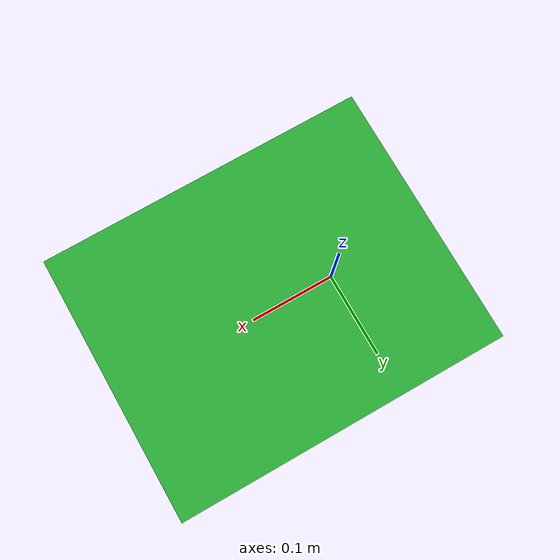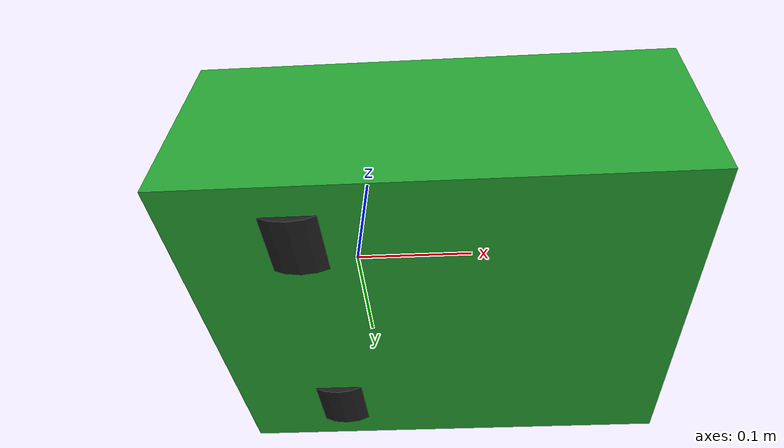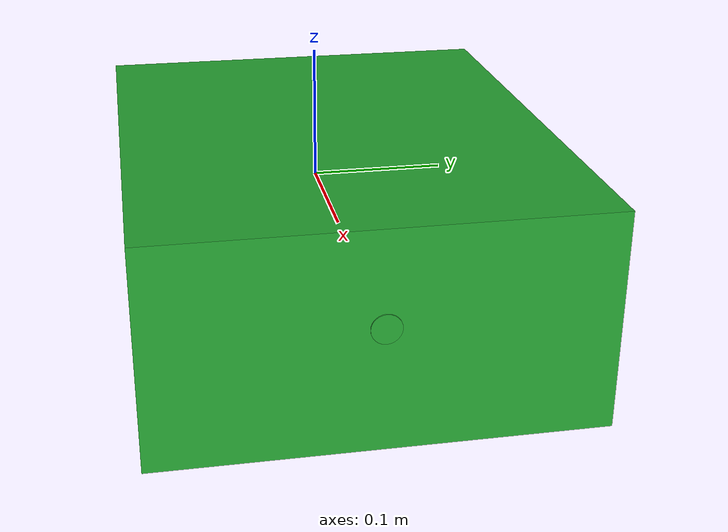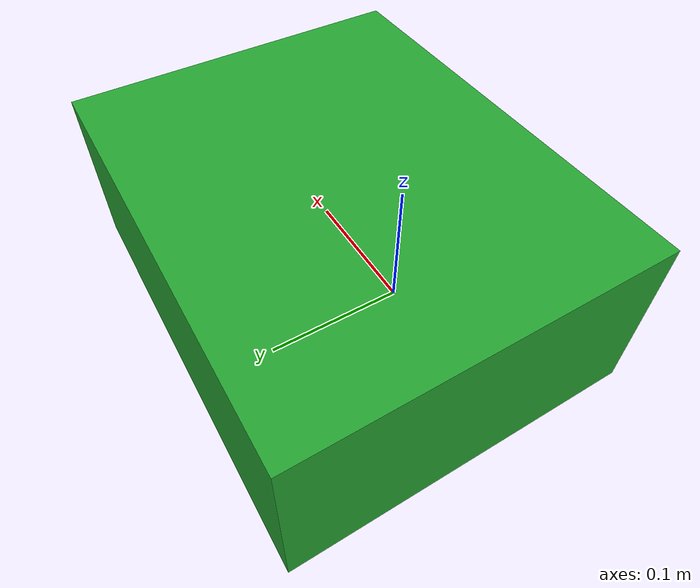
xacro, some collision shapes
<?xml version="1.0"?>
<!-- Basic differential drive mobile base -->
<robot xmlns:xacro="http://www.ros.org/wiki/xacro" name="diffdrive_robot">
  <xacro:arg name="prefix" default="" />
  <xacro:arg name="use_mock_hardware" default="false" />

  <!-- Include files -->
    <!-- Import Rviz colors -->
    <xacro:include filename="$(find robot_2w_description)/urdf/robot_2w.materials.xacro" />

    <!-- Robot Parameters -->
    <xacro:include filename="$(find robot_2w_description)/urdf/robot_2w_parameters.urdf.xacro" />

    <!-- Included Link URDF/XACRO Files -->
    <xacro:include filename="$(find robot_2w_description)/urdf/robot_2w_links/base.urdf.xacro" />
    <xacro:include filename="$(find robot_2w_description)/urdf/robot_2w_links/wheel.urdf.xacro" />
    <xacro:include filename="$(find robot_2w_description)/urdf/robot_2w_links/caster.urdf.xacro" />
    <xacro:include filename="$(find robot_2w_description)/urdf/robot_2w_links/lidar.urdf.xacro" />
    <xacro:include filename="$(find robot_2w_description)/urdf/robot_2w_links/imu.urdf.xacro" />
    <xacro:include filename="$(find robot_2w_description)/urdf/robot_2w_links/ultrasonic.urdf.xacro" />

    <!-- Robot Sensors -->
    <xacro:include filename="$(find robot_2w_description)/urdf/robot_2w_sensors.urdf.xacro" />

    <!-- Robot Actuators -->
    <xacro:include filename="$(find robot_2w_description)/urdf/robot_2w_actuators.urdf.xacro" />

    <!-- Import robot2w description -->
    <xacro:include filename="$(find robot_2w_description)/urdf/robot_2w_description.urdf.xacro" />
  <!-- Include files -->

  <!-- Create a robot_2w  -->
  <xacro:robot2w prefix="$(arg prefix)" />

</robot>

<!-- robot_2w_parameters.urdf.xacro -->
<robot xmlns:xacro="http://www.ros.org/wiki/xacro">

  <!-- Robot Parameters -->
  <xacro:property name="PI" value="3.1415926535897931"/>

  <xacro:property name="base_mass" value="15" /> <!-- arbitrary value for base mass -->
  <xacro:property name="base_width" value="0.1" />
  <xacro:property name="base_length" value="0.1" />
  <xacro:property name="base_height" value="0.05" />
  <xacro:property name="base_x_size" value="0.37" />
  <xacro:property name="base_y_size" value="0.30" />
  <xacro:property name="base_z_size" value="0.15" />

  <xacro:property name="wheel_mass" value="0.3" /> <!-- arbitrary value for wheel mass -->
  <xacro:property name="wheel_distance" value="0.2" />
  <xacro:property name="wheel_radius" value="0.045" />
  <xacro:property name="wheel_length" value="0.05" />
  <xacro:property name="wheel_x_offset" value="-0.02" />

  <xacro:property name="caster_wheel_mass" value="0.1" /> <!-- arbitrary value for caster wheel mass -->
  <xacro:property name="caster_wheel_radius" value="0.016" />

  <xacro:property name="lidar_cylinder_length" value="0.062" />
  <xacro:property name="lidar_cylinder_radius" value="0.02" />

  <xacro:property name="ultrasonic_cylinder_length" value="0.017" />
  <xacro:property name="ultrasonic_cylinder_radius" value="0.01" />

</robot>

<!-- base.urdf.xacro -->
<robot name="base" xmlns:xacro="http://www.ros.org/wiki/xacro">

  <xacro:macro name="base" params="prefix">

    <link name="${prefix}base_link">
      <visual>
        <origin xyz="0 0 -0.025" rpy="0 0 ${pi/2}"/>
        <geometry>
          <mesh filename="package://robot_2w_description/urdf/meshes/robot2w_chassis.stl" scale="0.0005 0.0005 0.0005"/>
          <box size="${base_x_size} ${base_y_size} ${base_z_size}"/>
        </geometry>
        <material name="green" />
      </visual>

      <collision>
        <origin xyz="0.077 0 -0.01" rpy="0 0 0"/>
        <geometry>
          <box size="${base_x_size} ${base_y_size} ${base_z_size}"/>
        </geometry>
        <material name="blue"/>
      </collision>

      <inertial>
        <origin xyz="0 0 0" rpy="0 0 0"/>
        <mass value="${base_mass}"/>
        <inertia
          ixx="${base_mass / 12.0 * (base_length*base_length + base_height*base_height)}" ixy="0.0" ixz="0.0"
          iyy="${base_mass / 12.0 * (base_height*base_height + base_width*base_width)}" iyz="0.0"
          izz="${base_mass / 12.0 * (base_width*base_width + base_length*base_length)}"/>
      </inertial>
    </link>

    <joint name="${prefix}base_joint" type="fixed">
      <parent link="${prefix}base_footprint"/>
      <child link="${prefix}base_link"/>
      <origin xyz="0.0 0.0 0.0" rpy="0 0 0"/>
    </joint>

    <!-- Gazebo Color -->
    <gazebo reference="${prefix}base_link">
      <material>Gazebo/Green</material>
    </gazebo>

  </xacro:macro>
</robot>

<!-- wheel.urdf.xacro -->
<robot name="wheel" xmlns:xacro="http://www.ros.org/wiki/xacro">

  <!-- side: left, right -->
  <!-- flip: left=1, right=-1 -->
  <xacro:macro name="wheel" params="prefix side parent flip">

    <link name="${prefix}${side}_wheel_link">
      <visual>
        <origin xyz="0 0 0" rpy="${pi/2} 0 0"/>
        <geometry>
          <cylinder length="${wheel_length}" radius="${wheel_radius}"/>
        </geometry>
          <material name="black"/>
      </visual>

      <collision>
        <origin xyz="0 0 0" rpy="${PI/2} 0 0"/>
        <geometry>
          <cylinder length="${wheel_length}" radius="${wheel_radius}"/>
        </geometry>
          <material name="black"/>
      </collision>

      <inertial>
        <origin xyz="0 0 0" rpy="${PI/2} 0 0"/>
        <mass value="${wheel_mass}"/>
        <inertia
          ixx="${wheel_mass / 12.0 * (3*wheel_radius*wheel_radius + wheel_length*wheel_length)}" ixy="0.0" ixz="0.0"
          iyy="${wheel_mass / 12.0 * (3*wheel_radius*wheel_radius + wheel_length*wheel_length)}" iyz="0.0"
          izz="${wheel_mass / 2.0 * wheel_radius*wheel_radius}"/>
      </inertial>
    </link>

    <joint name="${prefix}${side}_wheel_joint" type="continuous">
        <parent link="${prefix}${parent}" />
        <child link="${prefix}${side}_wheel_link" />
        <origin xyz="-0.02 ${flip*wheel_distance/2.0} -0.045" />
        <axis xyz="0 1 0" />
    </joint>

    <!-- Gazebo Color -->
    <gazebo reference="${prefix}${side}_wheel_link">
      <material>Gazebo/Black</material>
    </gazebo>

  </xacro:macro>
</robot>

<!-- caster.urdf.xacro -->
<robot name="caster" xmlns:xacro="http://www.ros.org/wiki/xacro">

  <xacro:macro name="caster" params="prefix parent">

    <!-- Caster Link -->
    <link name="${prefix}caster_link">
      <visual>
        <origin xyz="0 0 0" rpy="${pi/2} 0 0"/>
        <geometry>
            <sphere radius="${caster_wheel_radius}"/>
        </geometry>
          <material name="black"/>
      </visual>

      <collision>
        <origin xyz="0 0 0" rpy="1.57079 0 0"/>
        <geometry>
            <sphere radius="${caster_wheel_radius}"/>
        </geometry>
        <material name="black"/>
      </collision>

      <inertial>
        <origin xyz="0 0 0" rpy="0 0 0"/>
        <mass value="${caster_wheel_mass}"/>
        <inertia
          ixx="${caster_wheel_mass * 0.4 * (caster_wheel_radius * caster_wheel_radius)}" ixy="0.0" ixz="0.0"
          iyy="${caster_wheel_mass * 0.4 * (caster_wheel_radius * caster_wheel_radius)}" iyz="0.0"
          izz="${caster_wheel_mass * 0.4 * (caster_wheel_radius * caster_wheel_radius)}"/>
      </inertial>
    </link>

    <joint name="${prefix}caster_joint" type="fixed">
      <parent link="${prefix}${parent}" />
      <child link="${prefix}caster_link" />
      <origin xyz="0.22 0.0 -0.064" />
      <axis xyz="0 1 0" />
    </joint>

    <!-- Gazebo Color -->
    <gazebo reference="${prefix}caster_link">
      <material>Gazebo/Black</material>
    </gazebo>

    <!-- Make the caster_link frictionless for gazebo -->
    <gazebo reference="${prefix}caster_link">
      <!-- Friction parameters -->
      <mu1 value="0.0"/>
      <mu2 value="0.0"/>
      <!-- Stifness parameters Srping+Damper -->
      <kp value="1000000.0" />
      <kd value="10.0" />
    </gazebo>

  </xacro:macro>
</robot>

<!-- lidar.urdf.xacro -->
<robot name="lidar" xmlns:xacro="http://www.ros.org/wiki/xacro">

  <xacro:macro name="lidar" params="prefix parent">

    <!-- lidar link -->
    <link name="${prefix}lidar_link">
      <visual>
        <origin xyz="0 0 0" rpy="0 0 0"/>
        <geometry>
          <cylinder length="${lidar_cylinder_length}" radius="${lidar_cylinder_radius}"/>
        </geometry>
        <material name="green"/>
      </visual>
      <collision>
        <origin xyz="0 0 -${lidar_cylinder_length/2.0}" rpy="0 0 0"/>
        <geometry>
          <cylinder length="${lidar_cylinder_length}" radius="${lidar_cylinder_radius}"/>
        </geometry>
        <material name="black"/>
      </collision>
      <inertial>
      <mass value="0.1"/>
        <inertia ixx="0.000190416666667" ixy="0" ixz="0" iyy="0.0001904" iyz="0" izz="0.00036"/>
      </inertial>
    </link>

    <!-- lidar joint -->
    <joint name="${prefix}lidar_joint" type="fixed">
        <parent link="${prefix}${parent}" />
        <child link="${prefix}lidar_link" />
        <origin xyz="0.0 0.0 0.0" />
    </joint>

    <!-- Gazebo Color -->
    <gazebo reference="${prefix}lidar_link">
      <material>Gazebo/Green</material>
    </gazebo>

  </xacro:macro>
</robot>

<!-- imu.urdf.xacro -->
<robot name="imu" xmlns:xacro="http://www.ros.org/wiki/xacro">

  <xacro:macro name="imu" params="prefix parent">

    <!-- imu link -->
    <link name="${prefix}imu_link">
      <visual>
        <origin xyz="0 0 0.0" rpy="0 0 0"/>
        <geometry>
          <box size="0.02 0.02 0.02"/>
        </geometry>
        <material name="red"/>
      </visual>
      <collision>
        <origin xyz="0 0 0.0" rpy="0 0 0"/>
        <geometry>
          <box size="0.02 0.02 0.02"/>
        </geometry>
        <material name="red"/>
      </collision>
      <inertial>
        <mass value="0.1"/>
          <inertia ixx="0.000190416666667" ixy="0" ixz="0" iyy="0.0001904" iyz="0" izz="0.00036"/>
        </inertial>
    </link>

    <!-- imu joint -->
    <joint name="${prefix}imu_joint" type="fixed">
        <parent link="${prefix}${parent}" />
        <child link="${prefix}imu_link" />
        <origin xyz="-0.02 0 0.01" />
    </joint>

    <!-- Gazebo Color -->
    <gazebo reference="${prefix}imu_link">
      <material>Gazebo/Red</material>
    </gazebo>

  </xacro:macro>
</robot>

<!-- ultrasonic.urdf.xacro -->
<robot name="ultrasonic" xmlns:xacro="http://www.ros.org/wiki/xacro">

  <xacro:macro name="ultrasonic" params="prefix parent">

    <!-- Ultrasonic link -->
    <link name="${prefix}ultrasonic_sensor_link" >
      <visual>
        <origin xyz="-${ultrasonic_cylinder_length/2.0} 0 0" rpy="0 ${pi/2} 0"/>
        <geometry>
          <cylinder length="${ultrasonic_cylinder_length}" radius="${ultrasonic_cylinder_radius}"/>
        </geometry>
        <material name="green"/>
      </visual>
      <collision>
        <origin xyz="-${ultrasonic_cylinder_length/2.0} 0 0" rpy="0 0 0"/>
        <geometry>
          <cylinder length="${ultrasonic_cylinder_length}" radius="${ultrasonic_cylinder_radius}"/>
        </geometry>
        <material name="black"/>
      </collision>
    </link>

    <!-- ultrasonic joint -->
    <joint name="${prefix}ultrasonic_sensor_joint" type="fixed">
      <parent link="${prefix}${parent}"/>
      <child link="${prefix}ultrasonic_sensor_link"/>
      <origin xyz="0.263 0.0 0.0" rpy="0 0 0"/>
    </joint>

    <!-- Gazebo Color -->
    <gazebo reference="${prefix}ultrasonic_sensor_link">
      <material>Gazebo/Green</material>
    </gazebo>

  </xacro:macro>
</robot>

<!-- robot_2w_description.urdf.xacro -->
<robot xmlns:xacro="http://www.ros.org/wiki/xacro">

  <xacro:macro name="robot2w" params="prefix">

    <!-- Robot Footprint -->
    <link name="${prefix}base_footprint"/>

    <!-- Base -->
    <xacro:base prefix="${prefix}"/>

    <!-- Wheels -->
    <xacro:wheel prefix="${prefix}" side="left" parent="base_link" flip="1"/>
    <xacro:wheel prefix="${prefix}" side="right" parent="base_link" flip="-1"/>

    <!-- Caster wheel -->
    <xacro:caster prefix="${prefix}" parent="base_link"/>

    <!-- Laser -->
    <xacro:lidar prefix="${prefix}" parent="base_link"/>

    <!-- IMU -->
    <xacro:imu prefix="${prefix}" parent="base_link"/>

    <!-- Ultrasonic -->
    <xacro:ultrasonic prefix="${prefix}" parent="base_link"/>

    <!-- Sensors -->
    <xacro:sensors prefix="${prefix}"/>

    <!-- Actuators -->
    <xacro:actuators prefix="${prefix}"/>

  </xacro:macro>

</robot>
